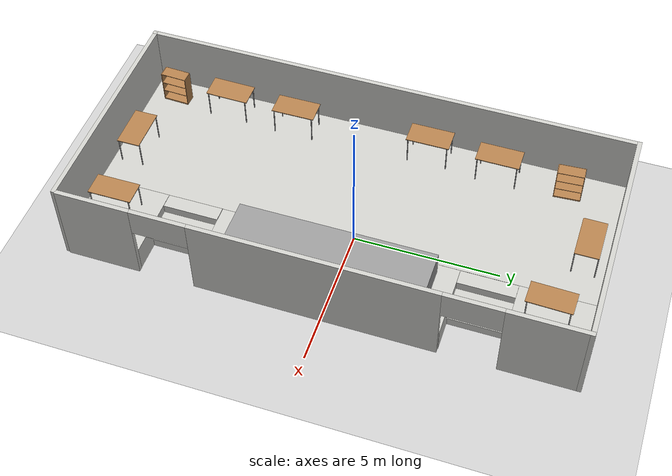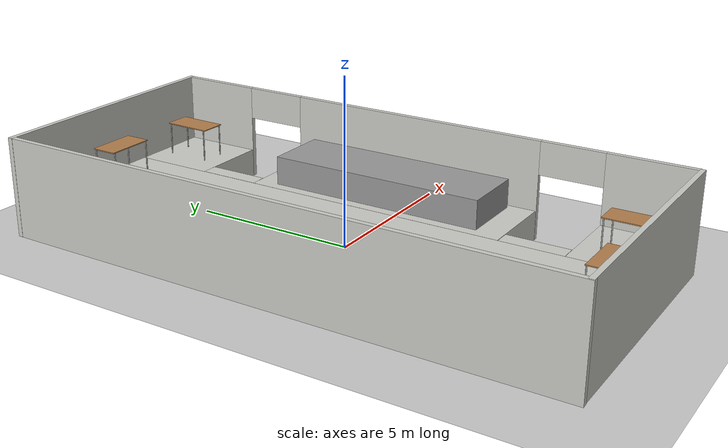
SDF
<sdf version="1.7">
 <world name="default">
  <light name="sun" type="directional">
   <pose>0 0 10 0 -0 0</pose>
   <diffuse>0.8 0.8 0.8 1</diffuse>
   <specular>0.2 0.2 0.2 1</specular>
   <attenuation>
    <range>1000</range>
    <constant>0.9</constant>
    <linear>0.01</linear>
    <quadratic>0.001</quadratic>
   </attenuation>
   <direction>-0.5 0.1 -0.9</direction>
   <spot><inner_angle>0</inner_angle><outer_angle>0</outer_angle><falloff>0</falloff></spot>
  </light>
  <model name="ground_plane">
   <static>1</static>
   <link name="link">
    <collision name="collision">
     <geometry><plane><normal>0 0 1</normal><size>100 100</size></plane></geometry>
     <surface>
      <contact><collide_bitmask>65535</collide_bitmask></contact>
      <friction><ode><mu>100</mu><mu2>50</mu2></ode></friction>
     </surface>
    </collision>
    <visual name="visual">
     <cast_shadows>0</cast_shadows>
     <geometry><plane><normal>0 0 1</normal><size>100 100</size></plane></geometry>
     <material>
      <script><uri>file://media/materials/scripts/gazebo.material</uri><name>Gazebo/Grey</name></script>
     </material>
    </visual>
   </link>
  </model>
  <gravity>0 0 -9.8</gravity>
  <magnetic_field>6e-06 2.3e-05 -4.2e-05</magnetic_field>
  <atmosphere type="adiabatic"/>
  <physics type="ode">
   <max_step_size>0.001</max_step_size>
   <real_time_factor>1</real_time_factor>
   <real_time_update_rate>100</real_time_update_rate>
  </physics>
  <scene><ambient>0.4 0.4 0.4 1</ambient><background>0.7 0.7 0.7 1</background><shadows>1</shadows></scene>
  <spherical_coordinates>
   <surface_model>EARTH_WGS84</surface_model>
   <latitude_deg>0</latitude_deg>
   <longitude_deg>0</longitude_deg>
   <elevation>0</elevation>
   <heading_deg>0</heading_deg>
  </spherical_coordinates>
  <model name="big_lab_final">
   <pose>-0.465455 -0.255995 0 0 -0 0</pose>
   <link name="Stairs_1">
    <visual name="Stairs_1_Visual_0">
     <pose>2.56912 -5.01602 0.15 0 -0 -1.5708</pose>
     <geometry><box><size>1.91 0.5 0.3</size></box></geometry>
     <material>
      <script><uri>file://media/materials/scripts/gazebo.material</uri><name>Gazebo/CeilingTiled</name></script>
      <ambient>0.333333 0.341176 0.32549 1</ambient>
     </material>
     <meta><layer>0</layer></meta>
    </visual>
    <collision name="Stairs_1_Collision_0">
     <geometry><box><size>1.91 0.5 0.3</size></box></geometry>
     <pose>2.56912 -5.01602 0.15 0 -0 -1.5708</pose>
    </collision>
    <visual name="Stairs_1_Visual_1">
     <pose>2.06912 -5.01602 0.45 0 -0 -1.5708</pose>
     <geometry><box><size>1.91 0.5 0.3</size></box></geometry>
     <material>
      <script><uri>file://media/materials/scripts/gazebo.material</uri><name>Gazebo/CeilingTiled</name></script>
      <ambient>0.333333 0.341176 0.32549 1</ambient>
     </material>
     <meta><layer>0</layer></meta>
    </visual>
    <collision name="Stairs_1_Collision_1">
     <geometry><box><size>1.91 0.5 0.3</size></box></geometry>
     <pose>2.06912 -5.01602 0.45 0 -0 -1.5708</pose>
    </collision>
    <visual name="Stairs_1_Visual_2">
     <pose>1.56912 -5.01602 0.75 0 -0 -1.5708</pose>
     <geometry><box><size>1.91 0.5 0.3</size></box></geometry>
     <material>
      <script><uri>file://media/materials/scripts/gazebo.material</uri><name>Gazebo/CeilingTiled</name></script>
      <ambient>0.333333 0.341176 0.32549 1</ambient>
     </material>
     <meta><layer>0</layer></meta>
    </visual>
    <collision name="Stairs_1_Collision_2">
     <geometry><box><size>1.91 0.5 0.3</size></box></geometry>
     <pose>1.56912 -5.01602 0.75 0 -0 -1.5708</pose>
    </collision>
   </link>
   <link name="Stairs_3">
    <visual name="Stairs_3_Visual_0">
     <pose>2.58039 5.06228 0.15 0 0 -1.5708</pose>
     <geometry><box><size>1.91 0.5 0.3</size></box></geometry>
     <material>
      <script><uri>file://media/materials/scripts/gazebo.material</uri><name>Gazebo/CeilingTiled</name></script>
      <ambient>0.333333 0.341176 0.32549 1</ambient>
     </material>
     <meta><layer>0</layer></meta>
    </visual>
    <collision name="Stairs_3_Collision_0">
     <geometry><box><size>1.91 0.5 0.3</size></box></geometry>
     <pose>2.58039 5.06228 0.15 0 0 -1.5708</pose>
    </collision>
    <visual name="Stairs_3_Visual_1">
     <pose>2.08039 5.06228 0.45 0 0 -1.5708</pose>
     <geometry><box><size>1.91 0.5 0.3</size></box></geometry>
     <material>
      <script><uri>file://media/materials/scripts/gazebo.material</uri><name>Gazebo/CeilingTiled</name></script>
      <ambient>0.333333 0.341176 0.32549 1</ambient>
     </material>
     <meta><layer>0</layer></meta>
    </visual>
    <collision name="Stairs_3_Collision_1">
     <geometry><box><size>1.91 0.5 0.3</size></box></geometry>
     <pose>2.08039 5.06228 0.45 0 0 -1.5708</pose>
    </collision>
    <visual name="Stairs_3_Visual_2">
     <pose>1.58039 5.06228 0.75 0 0 -1.5708</pose>
     <geometry><box><size>1.91 0.5 0.3</size></box></geometry>
     <material>
      <script><uri>file://media/materials/scripts/gazebo.material</uri><name>Gazebo/CeilingTiled</name></script>
      <ambient>0.333333 0.341176 0.32549 1</ambient>
     </material>
     <meta><layer>0</layer></meta>
    </visual>
    <collision name="Stairs_3_Collision_2">
     <geometry><box><size>1.91 0.5 0.3</size></box></geometry>
     <pose>1.58039 5.06228 0.75 0 0 -1.5708</pose>
    </collision>
   </link>
   <link name="Wall_0">
    <collision name="Wall_0_Collision">
     <geometry><box><size>17 5.15 0.9</size></box></geometry>
     <pose>0 0 0.45 0 -0 0</pose>
    </collision>
    <visual name="Wall_0_Visual">
     <pose>0 0 0.45 0 -0 0</pose>
     <geometry><box><size>17 5.15 0.9</size></box></geometry>
     <material>
      <script><uri>file://media/materials/scripts/gazebo.material</uri><name>Gazebo/CeilingTiled</name></script>
      <ambient>0.333333 0.341176 0.32549 1</ambient>
     </material>
     <meta><layer>0</layer></meta>
    </visual>
    <pose>-1.2516 0.017055 0 0 -0 -1.5708</pose>
   </link>
   <link name="Wall_11">
    <collision name="Wall_11_Collision">
     <geometry><box><size>7.875 0.15 3</size></box></geometry>
     <pose>0 0 1.5 0 -0 0</pose>
    </collision>
    <visual name="Wall_11_Visual">
     <pose>0 0 1.5 0 -0 0</pose>
     <geometry><box><size>7.875 0.15 3</size></box></geometry>
     <material>
      <script><uri>file://media/materials/scripts/gazebo.material</uri><name>Gazebo/CeilingTiled</name></script>
      <ambient>1 1 1 1</ambient>
     </material>
     <meta><layer>0</layer></meta>
    </visual>
    <pose>0.0055 -8.555 0 0 -0 0</pose>
   </link>
   <link name="Wall_13">
    <collision name="Wall_13_Collision">
     <geometry><box><size>7.95 0.15 3</size></box></geometry>
     <pose>0 0 1.5 0 -0 0</pose>
    </collision>
    <visual name="Wall_13_Visual">
     <pose>0 0 1.5 0 -0 0</pose>
     <geometry><box><size>7.95 0.15 3</size></box></geometry>
     <material>
      <script><uri>file://media/materials/scripts/gazebo.material</uri><name>Gazebo/CeilingTiled</name></script>
      <ambient>1 1 1 1</ambient>
     </material>
     <meta><layer>0</layer></meta>
    </visual>
    <pose>0 8.568 0 0 -0 3.14159</pose>
   </link>
   <link name="Wall_16">
    <collision name="Wall_16_Collision">
     <geometry><box><size>17.15 0.15 3</size></box></geometry>
     <pose>0 0 1.5 0 -0 0</pose>
    </collision>
    <visual name="Wall_16_Visual">
     <pose>0 0 1.5 0 -0 0</pose>
     <geometry><box><size>17.15 0.15 3</size></box></geometry>
     <material>
      <script><uri>file://media/materials/scripts/gazebo.material</uri><name>Gazebo/CeilingTiled</name></script>
      <ambient>1 1 1 1</ambient>
     </material>
     <meta><layer>0</layer></meta>
    </visual>
    <pose>-3.896 -0.07 0 0 -0 1.5708</pose>
   </link>
   <link name="Wall_18">
    <pose>3.898 0.07 0 0 -0 -1.5708</pose>
    <visual name="Wall_18_Visual_0">
     <pose>-7.25268 0 1.5 0 -0 0</pose>
     <geometry><box><size>2.64463 0.15 3</size></box></geometry>
     <material>
      <script><uri>file://media/materials/scripts/gazebo.material</uri><name>Gazebo/CeilingTiled</name></script>
      <ambient>1 1 1 1</ambient>
     </material>
     <meta><layer>0</layer></meta>
    </visual>
    <collision name="Wall_18_Collision_0">
     <geometry><box><size>2.64463 0.15 3</size></box></geometry>
     <pose>-7.25268 0 1.5 0 -0 0</pose>
    </collision>
    <visual name="Wall_18_Visual_1">
     <pose>0.054632 0 1.5 0 -0 0</pose>
     <geometry><box><size>8.15 0.15 3</size></box></geometry>
     <material>
      <script><uri>file://media/materials/scripts/gazebo.material</uri><name>Gazebo/CeilingTiled</name></script>
      <ambient>1 1 1 1</ambient>
     </material>
     <meta><layer>0</layer></meta>
    </visual>
    <collision name="Wall_18_Collision_1">
     <geometry><box><size>8.15 0.15 3</size></box></geometry>
     <pose>0.054632 0 1.5 0 -0 0</pose>
    </collision>
    <visual name="Wall_18_Visual_2">
     <pose>7.30732 0 1.5 0 -0 0</pose>
     <geometry><box><size>2.53537 0.15 3</size></box></geometry>
     <material>
      <script><uri>file://media/materials/scripts/gazebo.material</uri><name>Gazebo/CeilingTiled</name></script>
      <ambient>1 1 1 1</ambient>
     </material>
     <meta><layer>0</layer></meta>
    </visual>
    <collision name="Wall_18_Collision_2">
     <geometry><box><size>2.53537 0.15 3</size></box></geometry>
     <pose>7.30732 0 1.5 0 -0 0</pose>
    </collision>
    <visual name="Wall_18_Visual_3">
     <pose>-4.97537 0 2.5 0 -0 0</pose>
     <geometry><box><size>1.91 0.15 1</size></box></geometry>
     <material>
      <script><uri>file://media/materials/scripts/gazebo.material</uri><name>Gazebo/CeilingTiled</name></script>
      <ambient>1 1 1 1</ambient>
     </material>
     <meta><layer>0</layer></meta>
    </visual>
    <collision name="Wall_18_Collision_3">
     <geometry><box><size>1.91 0.15 1</size></box></geometry>
     <pose>-4.97537 0 2.5 0 -0 0</pose>
    </collision>
    <visual name="Wall_18_Visual_4">
     <pose>5.08463 0 2.5 0 -0 0</pose>
     <geometry><box><size>1.91 0.15 1</size></box></geometry>
     <material>
      <script><uri>file://media/materials/scripts/gazebo.material</uri><name>Gazebo/CeilingTiled</name></script>
      <ambient>1 1 1 1</ambient>
     </material>
     <meta><layer>0</layer></meta>
    </visual>
    <collision name="Wall_18_Collision_4">
     <geometry><box><size>1.91 0.15 1</size></box></geometry>
     <pose>5.08463 0 2.5 0 -0 0</pose>
    </collision>
   </link>
   <link name="Wall_2">
    <collision name="Wall_2_Collision">
     <geometry><box><size>2.51 2.5 0.9</size></box></geometry>
     <pose>0 0 0.45 0 -0 0</pose>
    </collision>
    <visual name="Wall_2_Visual">
     <pose>0 0 0.45 0 -0 0</pose>
     <geometry><box><size>2.51 2.5 0.9</size></box></geometry>
     <material>
      <script><uri>file://media/materials/scripts/gazebo.material</uri><name>Gazebo/CeilingTiled</name></script>
      <ambient>0.333333 0.341176 0.32549 1</ambient>
     </material>
     <meta><layer>0</layer></meta>
    </visual>
    <pose>2.575 -7.23 0 0 -0 0</pose>
   </link>
   <link name="Wall_4">
    <collision name="Wall_4_Collision">
     <geometry><box><size>2.51 2.5 0.9</size></box></geometry>
     <pose>0 0 0.45 0 -0 0</pose>
    </collision>
    <visual name="Wall_4_Visual">
     <pose>0 0 0.45 0 -0 0</pose>
     <geometry><box><size>2.51 2.5 0.9</size></box></geometry>
     <material>
      <script><uri>file://media/materials/scripts/gazebo.material</uri><name>Gazebo/CeilingTiled</name></script>
      <ambient>0.333333 0.341176 0.32549 1</ambient>
     </material>
     <meta><layer>0</layer></meta>
    </visual>
    <pose>2.573 7.2685 0 0 -0 3.14159</pose>
   </link>
   <link name="Wall_7">
    <collision name="Wall_7_Collision">
     <geometry><box><size>8.145 2.5 0.9</size></box></geometry>
     <pose>0 0 0.45 0 -0 0</pose>
    </collision>
    <visual name="Wall_7_Visual">
     <pose>0 0 0.45 0 -0 0</pose>
     <geometry><box><size>8.145 2.5 0.9</size></box></geometry>
     <material>
      <script><uri>file://media/materials/scripts/gazebo.material</uri><name>Gazebo/CeilingTiled</name></script>
      <ambient>0.333333 0.341176 0.32549 1</ambient>
     </material>
     <meta><layer>0</layer></meta>
    </visual>
    <pose>2.57459 0.029666 0 0 -0 -1.5708</pose>
   </link>
   <static>1</static>
  </model>
  <model name="table">
   <static>1</static>
   <link name="link">
    <collision name="surface">
     <pose>0 0 1 0 -0 0</pose>
     <geometry><box><size>1.5 0.8 0.03</size></box></geometry>
     <surface><friction><ode><mu>0.6</mu><mu2>0.6</mu2></ode></friction></surface>
    </collision>
    <visual name="visual1">
     <pose>0 0 1 0 -0 0</pose>
     <geometry><box><size>1.5 0.8 0.03</size></box></geometry>
     <material>
      <script><uri>file://media/materials/scripts/gazebo.material</uri><name>Gazebo/Wood</name></script>
     </material>
    </visual>
    <collision name="front_left_leg">
     <pose>0.68 0.38 0.5 0 -0 0</pose>
     <geometry><cylinder><radius>0.02</radius><length>1</length></cylinder></geometry>
    </collision>
    <visual name="front_left_leg">
     <pose>0.68 0.38 0.5 0 -0 0</pose>
     <geometry><cylinder><radius>0.02</radius><length>1</length></cylinder></geometry>
     <material>
      <script><uri>file://media/materials/scripts/gazebo.material</uri><name>Gazebo/Grey</name></script>
     </material>
    </visual>
    <collision name="front_right_leg">
     <pose>0.68 -0.38 0.5 0 -0 0</pose>
     <geometry><cylinder><radius>0.02</radius><length>1</length></cylinder></geometry>
    </collision>
    <visual name="front_right_leg">
     <pose>0.68 -0.38 0.5 0 -0 0</pose>
     <geometry><cylinder><radius>0.02</radius><length>1</length></cylinder></geometry>
     <material>
      <script><uri>file://media/materials/scripts/gazebo.material</uri><name>Gazebo/Grey</name></script>
     </material>
    </visual>
    <collision name="back_right_leg">
     <pose>-0.68 -0.38 0.5 0 -0 0</pose>
     <geometry><cylinder><radius>0.02</radius><length>1</length></cylinder></geometry>
    </collision>
    <visual name="back_right_leg">
     <pose>-0.68 -0.38 0.5 0 -0 0</pose>
     <geometry><cylinder><radius>0.02</radius><length>1</length></cylinder></geometry>
     <material>
      <script><uri>file://media/materials/scripts/gazebo.material</uri><name>Gazebo/Grey</name></script>
     </material>
    </visual>
    <collision name="back_left_leg">
     <pose>-0.68 0.38 0.5 0 -0 0</pose>
     <geometry><cylinder><radius>0.02</radius><length>1</length></cylinder></geometry>
    </collision>
    <visual name="back_left_leg">
     <pose>-0.68 0.38 0.5 0 -0 0</pose>
     <geometry><cylinder><radius>0.02</radius><length>1</length></cylinder></geometry>
     <material>
      <script><uri>file://media/materials/scripts/gazebo.material</uri><name>Gazebo/Grey</name></script>
     </material>
    </visual>
   </link>
   <pose>-0.786803 -8.0275 0.922176 0 -0 0</pose>
  </model>
  <model name="table_0">
   <static>1</static>
   <link name="link">
    <collision name="surface">
     <pose>0 0 1 0 -0 0</pose>
     <geometry><box><size>1.5 0.8 0.03</size></box></geometry>
     <surface><friction><ode><mu>0.6</mu><mu2>0.6</mu2></ode></friction></surface>
    </collision>
    <visual name="visual1">
     <pose>0 0 1 0 -0 0</pose>
     <geometry><box><size>1.5 0.8 0.03</size></box></geometry>
     <material>
      <script><uri>file://media/materials/scripts/gazebo.material</uri><name>Gazebo/Wood</name></script>
     </material>
    </visual>
    <collision name="front_left_leg">
     <pose>0.68 0.38 0.5 0 -0 0</pose>
     <geometry><cylinder><radius>0.02</radius><length>1</length></cylinder></geometry>
    </collision>
    <visual name="front_left_leg">
     <pose>0.68 0.38 0.5 0 -0 0</pose>
     <geometry><cylinder><radius>0.02</radius><length>1</length></cylinder></geometry>
     <material>
      <script><uri>file://media/materials/scripts/gazebo.material</uri><name>Gazebo/Grey</name></script>
     </material>
    </visual>
    <collision name="front_right_leg">
     <pose>0.68 -0.38 0.5 0 -0 0</pose>
     <geometry><cylinder><radius>0.02</radius><length>1</length></cylinder></geometry>
    </collision>
    <visual name="front_right_leg">
     <pose>0.68 -0.38 0.5 0 -0 0</pose>
     <geometry><cylinder><radius>0.02</radius><length>1</length></cylinder></geometry>
     <material>
      <script><uri>file://media/materials/scripts/gazebo.material</uri><name>Gazebo/Grey</name></script>
     </material>
    </visual>
    <collision name="back_right_leg">
     <pose>-0.68 -0.38 0.5 0 -0 0</pose>
     <geometry><cylinder><radius>0.02</radius><length>1</length></cylinder></geometry>
    </collision>
    <visual name="back_right_leg">
     <pose>-0.68 -0.38 0.5 0 -0 0</pose>
     <geometry><cylinder><radius>0.02</radius><length>1</length></cylinder></geometry>
     <material>
      <script><uri>file://media/materials/scripts/gazebo.material</uri><name>Gazebo/Grey</name></script>
     </material>
    </visual>
    <collision name="back_left_leg">
     <pose>-0.68 0.38 0.5 0 -0 0</pose>
     <geometry><cylinder><radius>0.02</radius><length>1</length></cylinder></geometry>
    </collision>
    <visual name="back_left_leg">
     <pose>-0.68 0.38 0.5 0 -0 0</pose>
     <geometry><cylinder><radius>0.02</radius><length>1</length></cylinder></geometry>
     <material>
      <script><uri>file://media/materials/scripts/gazebo.material</uri><name>Gazebo/Grey</name></script>
     </material>
    </visual>
   </link>
   <pose>-0.860523 7.56506 0.938554 0 -0 0</pose>
  </model>
  <model name="table_1">
   <static>1</static>
   <link name="link">
    <collision name="surface">
     <pose>0 0 1 0 -0 0</pose>
     <geometry><box><size>1.5 0.8 0.03</size></box></geometry>
     <surface><friction><ode><mu>0.6</mu><mu2>0.6</mu2></ode></friction></surface>
    </collision>
    <visual name="visual1">
     <pose>0 0 1 0 -0 0</pose>
     <geometry><box><size>1.5 0.8 0.03</size></box></geometry>
     <material>
      <script><uri>file://media/materials/scripts/gazebo.material</uri><name>Gazebo/Wood</name></script>
     </material>
    </visual>
    <collision name="front_left_leg">
     <pose>0.68 0.38 0.5 0 -0 0</pose>
     <geometry><cylinder><radius>0.02</radius><length>1</length></cylinder></geometry>
    </collision>
    <visual name="front_left_leg">
     <pose>0.68 0.38 0.5 0 -0 0</pose>
     <geometry><cylinder><radius>0.02</radius><length>1</length></cylinder></geometry>
     <material>
      <script><uri>file://media/materials/scripts/gazebo.material</uri><name>Gazebo/Grey</name></script>
     </material>
    </visual>
    <collision name="front_right_leg">
     <pose>0.68 -0.38 0.5 0 -0 0</pose>
     <geometry><cylinder><radius>0.02</radius><length>1</length></cylinder></geometry>
    </collision>
    <visual name="front_right_leg">
     <pose>0.68 -0.38 0.5 0 -0 0</pose>
     <geometry><cylinder><radius>0.02</radius><length>1</length></cylinder></geometry>
     <material>
      <script><uri>file://media/materials/scripts/gazebo.material</uri><name>Gazebo/Grey</name></script>
     </material>
    </visual>
    <collision name="back_right_leg">
     <pose>-0.68 -0.38 0.5 0 -0 0</pose>
     <geometry><cylinder><radius>0.02</radius><length>1</length></cylinder></geometry>
    </collision>
    <visual name="back_right_leg">
     <pose>-0.68 -0.38 0.5 0 -0 0</pose>
     <geometry><cylinder><radius>0.02</radius><length>1</length></cylinder></geometry>
     <material>
      <script><uri>file://media/materials/scripts/gazebo.material</uri><name>Gazebo/Grey</name></script>
     </material>
    </visual>
    <collision name="back_left_leg">
     <pose>-0.68 0.38 0.5 0 -0 0</pose>
     <geometry><cylinder><radius>0.02</radius><length>1</length></cylinder></geometry>
    </collision>
    <visual name="back_left_leg">
     <pose>-0.68 0.38 0.5 0 -0 0</pose>
     <geometry><cylinder><radius>0.02</radius><length>1</length></cylinder></geometry>
     <material>
      <script><uri>file://media/materials/scripts/gazebo.material</uri><name>Gazebo/Grey</name></script>
     </material>
    </visual>
   </link>
   <pose>-3.43018 3.98699 0.900017 0 -0 1.5681</pose>
  </model>
  <model name="table_2">
   <static>1</static>
   <link name="link">
    <collision name="surface">
     <pose>0 0 1 0 -0 0</pose>
     <geometry><box><size>1.5 0.8 0.03</size></box></geometry>
     <surface><friction><ode><mu>0.6</mu><mu2>0.6</mu2></ode></friction></surface>
    </collision>
    <visual name="visual1">
     <pose>0 0 1 0 -0 0</pose>
     <geometry><box><size>1.5 0.8 0.03</size></box></geometry>
     <material>
      <script><uri>file://media/materials/scripts/gazebo.material</uri><name>Gazebo/Wood</name></script>
     </material>
    </visual>
    <collision name="front_left_leg">
     <pose>0.68 0.38 0.5 0 -0 0</pose>
     <geometry><cylinder><radius>0.02</radius><length>1</length></cylinder></geometry>
    </collision>
    <visual name="front_left_leg">
     <pose>0.68 0.38 0.5 0 -0 0</pose>
     <geometry><cylinder><radius>0.02</radius><length>1</length></cylinder></geometry>
     <material>
      <script><uri>file://media/materials/scripts/gazebo.material</uri><name>Gazebo/Grey</name></script>
     </material>
    </visual>
    <collision name="front_right_leg">
     <pose>0.68 -0.38 0.5 0 -0 0</pose>
     <geometry><cylinder><radius>0.02</radius><length>1</length></cylinder></geometry>
    </collision>
    <visual name="front_right_leg">
     <pose>0.68 -0.38 0.5 0 -0 0</pose>
     <geometry><cylinder><radius>0.02</radius><length>1</length></cylinder></geometry>
     <material>
      <script><uri>file://media/materials/scripts/gazebo.material</uri><name>Gazebo/Grey</name></script>
     </material>
    </visual>
    <collision name="back_right_leg">
     <pose>-0.68 -0.38 0.5 0 -0 0</pose>
     <geometry><cylinder><radius>0.02</radius><length>1</length></cylinder></geometry>
    </collision>
    <visual name="back_right_leg">
     <pose>-0.68 -0.38 0.5 0 -0 0</pose>
     <geometry><cylinder><radius>0.02</radius><length>1</length></cylinder></geometry>
     <material>
      <script><uri>file://media/materials/scripts/gazebo.material</uri><name>Gazebo/Grey</name></script>
     </material>
    </visual>
    <collision name="back_left_leg">
     <pose>-0.68 0.38 0.5 0 -0 0</pose>
     <geometry><cylinder><radius>0.02</radius><length>1</length></cylinder></geometry>
    </collision>
    <visual name="back_left_leg">
     <pose>-0.68 0.38 0.5 0 -0 0</pose>
     <geometry><cylinder><radius>0.02</radius><length>1</length></cylinder></geometry>
     <material>
      <script><uri>file://media/materials/scripts/gazebo.material</uri><name>Gazebo/Grey</name></script>
     </material>
    </visual>
   </link>
   <pose>-3.55045 1.5471 0.909852 0 -0 1.57379</pose>
  </model>
  <model name="table_3">
   <static>1</static>
   <link name="link">
    <collision name="surface">
     <pose>0 0 1 0 -0 0</pose>
     <geometry><box><size>1.5 0.8 0.03</size></box></geometry>
     <surface><friction><ode><mu>0.6</mu><mu2>0.6</mu2></ode></friction></surface>
    </collision>
    <visual name="visual1">
     <pose>0 0 1 0 -0 0</pose>
     <geometry><box><size>1.5 0.8 0.03</size></box></geometry>
     <material>
      <script><uri>file://media/materials/scripts/gazebo.material</uri><name>Gazebo/Wood</name></script>
     </material>
    </visual>
    <collision name="front_left_leg">
     <pose>0.68 0.38 0.5 0 -0 0</pose>
     <geometry><cylinder><radius>0.02</radius><length>1</length></cylinder></geometry>
    </collision>
    <visual name="front_left_leg">
     <pose>0.68 0.38 0.5 0 -0 0</pose>
     <geometry><cylinder><radius>0.02</radius><length>1</length></cylinder></geometry>
     <material>
      <script><uri>file://media/materials/scripts/gazebo.material</uri><name>Gazebo/Grey</name></script>
     </material>
    </visual>
    <collision name="front_right_leg">
     <pose>0.68 -0.38 0.5 0 -0 0</pose>
     <geometry><cylinder><radius>0.02</radius><length>1</length></cylinder></geometry>
    </collision>
    <visual name="front_right_leg">
     <pose>0.68 -0.38 0.5 0 -0 0</pose>
     <geometry><cylinder><radius>0.02</radius><length>1</length></cylinder></geometry>
     <material>
      <script><uri>file://media/materials/scripts/gazebo.material</uri><name>Gazebo/Grey</name></script>
     </material>
    </visual>
    <collision name="back_right_leg">
     <pose>-0.68 -0.38 0.5 0 -0 0</pose>
     <geometry><cylinder><radius>0.02</radius><length>1</length></cylinder></geometry>
    </collision>
    <visual name="back_right_leg">
     <pose>-0.68 -0.38 0.5 0 -0 0</pose>
     <geometry><cylinder><radius>0.02</radius><length>1</length></cylinder></geometry>
     <material>
      <script><uri>file://media/materials/scripts/gazebo.material</uri><name>Gazebo/Grey</name></script>
     </material>
    </visual>
    <collision name="back_left_leg">
     <pose>-0.68 0.38 0.5 0 -0 0</pose>
     <geometry><cylinder><radius>0.02</radius><length>1</length></cylinder></geometry>
    </collision>
    <visual name="back_left_leg">
     <pose>-0.68 0.38 0.5 0 -0 0</pose>
     <geometry><cylinder><radius>0.02</radius><length>1</length></cylinder></geometry>
     <material>
      <script><uri>file://media/materials/scripts/gazebo.material</uri><name>Gazebo/Grey</name></script>
     </material>
    </visual>
   </link>
   <pose>-3.41167 -3.23121 0.91337 0 -0 1.57742</pose>
  </model>
  <model name="table_4">
   <static>1</static>
   <link name="link">
    <collision name="surface">
     <pose>0 0 1 0 -0 0</pose>
     <geometry><box><size>1.5 0.8 0.03</size></box></geometry>
     <surface><friction><ode><mu>0.6</mu><mu2>0.6</mu2></ode></friction></surface>
    </collision>
    <visual name="visual1">
     <pose>0 0 1 0 -0 0</pose>
     <geometry><box><size>1.5 0.8 0.03</size></box></geometry>
     <material>
      <script><uri>file://media/materials/scripts/gazebo.material</uri><name>Gazebo/Wood</name></script>
     </material>
    </visual>
    <collision name="front_left_leg">
     <pose>0.68 0.38 0.5 0 -0 0</pose>
     <geometry><cylinder><radius>0.02</radius><length>1</length></cylinder></geometry>
    </collision>
    <visual name="front_left_leg">
     <pose>0.68 0.38 0.5 0 -0 0</pose>
     <geometry><cylinder><radius>0.02</radius><length>1</length></cylinder></geometry>
     <material>
      <script><uri>file://media/materials/scripts/gazebo.material</uri><name>Gazebo/Grey</name></script>
     </material>
    </visual>
    <collision name="front_right_leg">
     <pose>0.68 -0.38 0.5 0 -0 0</pose>
     <geometry><cylinder><radius>0.02</radius><length>1</length></cylinder></geometry>
    </collision>
    <visual name="front_right_leg">
     <pose>0.68 -0.38 0.5 0 -0 0</pose>
     <geometry><cylinder><radius>0.02</radius><length>1</length></cylinder></geometry>
     <material>
      <script><uri>file://media/materials/scripts/gazebo.material</uri><name>Gazebo/Grey</name></script>
     </material>
    </visual>
    <collision name="back_right_leg">
     <pose>-0.68 -0.38 0.5 0 -0 0</pose>
     <geometry><cylinder><radius>0.02</radius><length>1</length></cylinder></geometry>
    </collision>
    <visual name="back_right_leg">
     <pose>-0.68 -0.38 0.5 0 -0 0</pose>
     <geometry><cylinder><radius>0.02</radius><length>1</length></cylinder></geometry>
     <material>
      <script><uri>file://media/materials/scripts/gazebo.material</uri><name>Gazebo/Grey</name></script>
     </material>
    </visual>
    <collision name="back_left_leg">
     <pose>-0.68 0.38 0.5 0 -0 0</pose>
     <geometry><cylinder><radius>0.02</radius><length>1</length></cylinder></geometry>
    </collision>
    <visual name="back_left_leg">
     <pose>-0.68 0.38 0.5 0 -0 0</pose>
     <geometry><cylinder><radius>0.02</radius><length>1</length></cylinder></geometry>
     <material>
      <script><uri>file://media/materials/scripts/gazebo.material</uri><name>Gazebo/Grey</name></script>
     </material>
    </visual>
   </link>
   <pose>-3.50182 -5.69956 0.91147 0.018351 0.00252 1.55812</pose>
  </model>
  <model name="table_5">
   <static>1</static>
   <link name="link">
    <collision name="surface">
     <pose>0 0 1 0 -0 0</pose>
     <geometry><box><size>1.5 0.8 0.03</size></box></geometry>
     <surface><friction><ode><mu>0.6</mu><mu2>0.6</mu2></ode></friction></surface>
    </collision>
    <visual name="visual1">
     <pose>0 0 1 0 -0 0</pose>
     <geometry><box><size>1.5 0.8 0.03</size></box></geometry>
     <material>
      <script><uri>file://media/materials/scripts/gazebo.material</uri><name>Gazebo/Wood</name></script>
     </material>
    </visual>
    <collision name="front_left_leg">
     <pose>0.68 0.38 0.5 0 -0 0</pose>
     <geometry><cylinder><radius>0.02</radius><length>1</length></cylinder></geometry>
    </collision>
    <visual name="front_left_leg">
     <pose>0.68 0.38 0.5 0 -0 0</pose>
     <geometry><cylinder><radius>0.02</radius><length>1</length></cylinder></geometry>
     <material>
      <script><uri>file://media/materials/scripts/gazebo.material</uri><name>Gazebo/Grey</name></script>
     </material>
    </visual>
    <collision name="front_right_leg">
     <pose>0.68 -0.38 0.5 0 -0 0</pose>
     <geometry><cylinder><radius>0.02</radius><length>1</length></cylinder></geometry>
    </collision>
    <visual name="front_right_leg">
     <pose>0.68 -0.38 0.5 0 -0 0</pose>
     <geometry><cylinder><radius>0.02</radius><length>1</length></cylinder></geometry>
     <material>
      <script><uri>file://media/materials/scripts/gazebo.material</uri><name>Gazebo/Grey</name></script>
     </material>
    </visual>
    <collision name="back_right_leg">
     <pose>-0.68 -0.38 0.5 0 -0 0</pose>
     <geometry><cylinder><radius>0.02</radius><length>1</length></cylinder></geometry>
    </collision>
    <visual name="back_right_leg">
     <pose>-0.68 -0.38 0.5 0 -0 0</pose>
     <geometry><cylinder><radius>0.02</radius><length>1</length></cylinder></geometry>
     <material>
      <script><uri>file://media/materials/scripts/gazebo.material</uri><name>Gazebo/Grey</name></script>
     </material>
    </visual>
    <collision name="back_left_leg">
     <pose>-0.68 0.38 0.5 0 -0 0</pose>
     <geometry><cylinder><radius>0.02</radius><length>1</length></cylinder></geometry>
    </collision>
    <visual name="back_left_leg">
     <pose>-0.68 0.38 0.5 0 -0 0</pose>
     <geometry><cylinder><radius>0.02</radius><length>1</length></cylinder></geometry>
     <material>
      <script><uri>file://media/materials/scripts/gazebo.material</uri><name>Gazebo/Grey</name></script>
     </material>
    </visual>
   </link>
   <pose>1.82443 6.88155 1.00192 0 0 -1.59504</pose>
  </model>
  <model name="table_6">
   <static>1</static>
   <link name="link">
    <collision name="surface">
     <pose>0 0 1 0 -0 0</pose>
     <geometry><box><size>1.5 0.8 0.03</size></box></geometry>
     <surface><friction><ode><mu>0.6</mu><mu2>0.6</mu2></ode></friction></surface>
    </collision>
    <visual name="visual1">
     <pose>0 0 1 0 -0 0</pose>
     <geometry><box><size>1.5 0.8 0.03</size></box></geometry>
     <material>
      <script><uri>file://media/materials/scripts/gazebo.material</uri><name>Gazebo/Wood</name></script>
     </material>
    </visual>
    <collision name="front_left_leg">
     <pose>0.68 0.38 0.5 0 -0 0</pose>
     <geometry><cylinder><radius>0.02</radius><length>1</length></cylinder></geometry>
    </collision>
    <visual name="front_left_leg">
     <pose>0.68 0.38 0.5 0 -0 0</pose>
     <geometry><cylinder><radius>0.02</radius><length>1</length></cylinder></geometry>
     <material>
      <script><uri>file://media/materials/scripts/gazebo.material</uri><name>Gazebo/Grey</name></script>
     </material>
    </visual>
    <collision name="front_right_leg">
     <pose>0.68 -0.38 0.5 0 -0 0</pose>
     <geometry><cylinder><radius>0.02</radius><length>1</length></cylinder></geometry>
    </collision>
    <visual name="front_right_leg">
     <pose>0.68 -0.38 0.5 0 -0 0</pose>
     <geometry><cylinder><radius>0.02</radius><length>1</length></cylinder></geometry>
     <material>
      <script><uri>file://media/materials/scripts/gazebo.material</uri><name>Gazebo/Grey</name></script>
     </material>
    </visual>
    <collision name="back_right_leg">
     <pose>-0.68 -0.38 0.5 0 -0 0</pose>
     <geometry><cylinder><radius>0.02</radius><length>1</length></cylinder></geometry>
    </collision>
    <visual name="back_right_leg">
     <pose>-0.68 -0.38 0.5 0 -0 0</pose>
     <geometry><cylinder><radius>0.02</radius><length>1</length></cylinder></geometry>
     <material>
      <script><uri>file://media/materials/scripts/gazebo.material</uri><name>Gazebo/Grey</name></script>
     </material>
    </visual>
    <collision name="back_left_leg">
     <pose>-0.68 0.38 0.5 0 -0 0</pose>
     <geometry><cylinder><radius>0.02</radius><length>1</length></cylinder></geometry>
    </collision>
    <visual name="back_left_leg">
     <pose>-0.68 0.38 0.5 0 -0 0</pose>
     <geometry><cylinder><radius>0.02</radius><length>1</length></cylinder></geometry>
     <material>
      <script><uri>file://media/materials/scripts/gazebo.material</uri><name>Gazebo/Grey</name></script>
     </material>
    </visual>
   </link>
   <pose>1.91527 -7.61519 0.897907 0 -0 1.57377</pose>
  </model>
  <model name="bookshelf">
   <static>1</static>
   <link name="link">
    <inertial><mass>1</mass></inertial>
    <collision name="back">
     <pose>0 0.005 0.6 0 -0 0</pose>
     <geometry><box><size>0.9 0.01 1.2</size></box></geometry>
    </collision>
    <visual name="visual1">
     <pose>0 0.005 0.6 0 -0 0</pose>
     <geometry><box><size>0.9 0.01 1.2</size></box></geometry>
     <material>
      <script><uri>file://media/materials/scripts/gazebo.material</uri><name>Gazebo/Wood</name></script>
     </material>
    </visual>
    <collision name="left_side">
     <pose>0.45 -0.195 0.6 0 -0 0</pose>
     <geometry><box><size>0.02 0.4 1.2</size></box></geometry>
    </collision>
    <visual name="visual2">
     <pose>0.45 -0.195 0.6 0 -0 0</pose>
     <geometry><box><size>0.02 0.4 1.2</size></box></geometry>
     <material>
      <script><uri>file://media/materials/scripts/gazebo.material</uri><name>Gazebo/Wood</name></script>
     </material>
    </visual>
    <collision name="right_side">
     <pose>-0.45 -0.195 0.6 0 -0 0</pose>
     <geometry><box><size>0.02 0.4 1.2</size></box></geometry>
    </collision>
    <visual name="visual3">
     <pose>-0.45 -0.195 0.6 0 -0 0</pose>
     <geometry><box><size>0.02 0.4 1.2</size></box></geometry>
     <material>
      <script><uri>file://media/materials/scripts/gazebo.material</uri><name>Gazebo/Wood</name></script>
     </material>
    </visual>
    <collision name="bottom">
     <pose>0 -0.195 0.03 0 -0 0</pose>
     <geometry><box><size>0.88 0.4 0.06</size></box></geometry>
    </collision>
    <visual name="visual4">
     <pose>0 -0.195 0.03 0 -0 0</pose>
     <geometry><box><size>0.88 0.4 0.06</size></box></geometry>
     <material>
      <script><uri>file://media/materials/scripts/gazebo.material</uri><name>Gazebo/Wood</name></script>
     </material>
    </visual>
    <collision name="top">
     <pose>0 -0.195 1.19 0 -0 0</pose>
     <geometry><box><size>0.88 0.4 0.02</size></box></geometry>
    </collision>
    <visual name="visual5">
     <pose>0 -0.195 1.19 0 -0 0</pose>
     <geometry><box><size>0.88 0.4 0.02</size></box></geometry>
     <material>
      <script><uri>file://media/materials/scripts/gazebo.material</uri><name>Gazebo/Wood</name></script>
     </material>
    </visual>
    <collision name="low_shelf">
     <pose>0 -0.195 0.43 0 -0 0</pose>
     <geometry><box><size>0.88 0.4 0.02</size></box></geometry>
    </collision>
    <visual name="visual6">
     <pose>0 -0.195 0.43 0 -0 0</pose>
     <geometry><box><size>0.88 0.4 0.02</size></box></geometry>
     <material>
      <script><uri>file://media/materials/scripts/gazebo.material</uri><name>Gazebo/Wood</name></script>
     </material>
    </visual>
    <collision name="high_shelf">
     <pose>0 -0.195 0.8 0 -0 0</pose>
     <geometry><box><size>0.88 0.4 0.02</size></box></geometry>
    </collision>
    <visual name="visual7">
     <pose>0 -0.195 0.8 0 -0 0</pose>
     <geometry><box><size>0.88 0.4 0.02</size></box></geometry>
     <material>
      <script><uri>file://media/materials/scripts/gazebo.material</uri><name>Gazebo/Wood</name></script>
     </material>
    </visual>
   </link>
   <pose>-3.67668 -7.7689 0.897537 0 -0 1.5299</pose>
  </model>
  <model name="bookshelf_0">
   <static>1</static>
   <link name="link">
    <inertial><mass>1</mass></inertial>
    <collision name="back">
     <pose>0 0.005 0.6 0 -0 0</pose>
     <geometry><box><size>0.9 0.01 1.2</size></box></geometry>
    </collision>
    <visual name="visual1">
     <pose>0 0.005 0.6 0 -0 0</pose>
     <geometry><box><size>0.9 0.01 1.2</size></box></geometry>
     <material>
      <script><uri>file://media/materials/scripts/gazebo.material</uri><name>Gazebo/Wood</name></script>
     </material>
    </visual>
    <collision name="left_side">
     <pose>0.45 -0.195 0.6 0 -0 0</pose>
     <geometry><box><size>0.02 0.4 1.2</size></box></geometry>
    </collision>
    <visual name="visual2">
     <pose>0.45 -0.195 0.6 0 -0 0</pose>
     <geometry><box><size>0.02 0.4 1.2</size></box></geometry>
     <material>
      <script><uri>file://media/materials/scripts/gazebo.material</uri><name>Gazebo/Wood</name></script>
     </material>
    </visual>
    <collision name="right_side">
     <pose>-0.45 -0.195 0.6 0 -0 0</pose>
     <geometry><box><size>0.02 0.4 1.2</size></box></geometry>
    </collision>
    <visual name="visual3">
     <pose>-0.45 -0.195 0.6 0 -0 0</pose>
     <geometry><box><size>0.02 0.4 1.2</size></box></geometry>
     <material>
      <script><uri>file://media/materials/scripts/gazebo.material</uri><name>Gazebo/Wood</name></script>
     </material>
    </visual>
    <collision name="bottom">
     <pose>0 -0.195 0.03 0 -0 0</pose>
     <geometry><box><size>0.88 0.4 0.06</size></box></geometry>
    </collision>
    <visual name="visual4">
     <pose>0 -0.195 0.03 0 -0 0</pose>
     <geometry><box><size>0.88 0.4 0.06</size></box></geometry>
     <material>
      <script><uri>file://media/materials/scripts/gazebo.material</uri><name>Gazebo/Wood</name></script>
     </material>
    </visual>
    <collision name="top">
     <pose>0 -0.195 1.19 0 -0 0</pose>
     <geometry><box><size>0.88 0.4 0.02</size></box></geometry>
    </collision>
    <visual name="visual5">
     <pose>0 -0.195 1.19 0 -0 0</pose>
     <geometry><box><size>0.88 0.4 0.02</size></box></geometry>
     <material>
      <script><uri>file://media/materials/scripts/gazebo.material</uri><name>Gazebo/Wood</name></script>
     </material>
    </visual>
    <collision name="low_shelf">
     <pose>0 -0.195 0.43 0 -0 0</pose>
     <geometry><box><size>0.88 0.4 0.02</size></box></geometry>
    </collision>
    <visual name="visual6">
     <pose>0 -0.195 0.43 0 -0 0</pose>
     <geometry><box><size>0.88 0.4 0.02</size></box></geometry>
     <material>
      <script><uri>file://media/materials/scripts/gazebo.material</uri><name>Gazebo/Wood</name></script>
     </material>
    </visual>
    <collision name="high_shelf">
     <pose>0 -0.195 0.8 0 -0 0</pose>
     <geometry><box><size>0.88 0.4 0.02</size></box></geometry>
    </collision>
    <visual name="visual7">
     <pose>0 -0.195 0.8 0 -0 0</pose>
     <geometry><box><size>0.88 0.4 0.02</size></box></geometry>
     <material>
      <script><uri>file://media/materials/scripts/gazebo.material</uri><name>Gazebo/Wood</name></script>
     </material>
    </visual>
   </link>
   <pose>-3.52968 6.40981 0.896349 0 -0 1.63579</pose>
  </model>
  <model name="unit_box">
   <static>1</static>
   <link name="link">
    <pose>2.15 -0.18 1.35 0 -0 0</pose>
    <inertial>
     <mass>1</mass>
     <inertia>
      <ixx>0.166667</ixx>
      <ixy>0</ixy>
      <ixz>0</ixz>
      <iyy>0.166667</iyy>
      <iyz>0</iyz>
      <izz>0.166667</izz>
     </inertia>
    </inertial>
    <collision name="collision"><geometry><box><size>2.00006 6.67314 0.870435</size></box></geometry></collision>
    <visual name="visual">
     <geometry><box><size>2.00006 6.67314 0.870435</size></box></geometry>
     <material>
      <script><name>Gazebo/Grey</name><uri>file://media/materials/scripts/gazebo.material</uri></script>
     </material>
    </visual>
   </link>
  </model>
  <model name="stairs1_wall_1">
   <pose>2 3.75 1.32716 0 -0 1.5707</pose>
   <static>1</static>
   <link name="link">
    <collision name="collision"><geometry><box><size>0.12 2.43 0.87</size></box></geometry></collision>
    <velocity>0 0.006187 -0.273623 -0.085031 0 0</velocity>
    <acceleration>-0 9.8 0 -0.416718 -0 0</acceleration>
    <wrench>-0 9.8 0 0 -0 0</wrench>
   </link>
  </model>
  <model name="stairs1_wall_2">
   <pose>2 5.85 1.32716 0 -0 1.5707</pose>
   <static>1</static>
   <link name="link">
    <collision name="collision"><geometry><box><size>0.12 2.43 0.87</size></box></geometry></collision>
    <velocity>0 0.006187 -0.273623 -0.085031 0 0</velocity>
    <acceleration>-0 9.8 0 -0.416718 -0 0</acceleration>
    <wrench>-0 9.8 0 0 -0 0</wrench>
   </link>
  </model>
  <model name="stairs1_wall_3">
   <pose>0.8 4.83 1.35 0 -0 0</pose>
   <static>1</static>
   <link name="link">
    <collision name="collision"><geometry><box><size>0.12 1.9 0.87</size></box></geometry></collision>
   </link>
  </model>
  <model name="stairs2_wall_1">
   <pose>2 -4.23 1.32716 0 -0 1.5707</pose>
   <static>1</static>
   <link name="link">
    <collision name="collision"><geometry><box><size>0.12 2.43 0.87</size></box></geometry></collision>
   </link>
  </model>
  <model name="stairs2_wall_2">
   <pose>2 -6.31 1.32716 0 -0 1.5707</pose>
   <static>1</static>
   <link name="link">
    <collision name="collision"><geometry><box><size>0.12 2.43 0.87</size></box></geometry></collision>
   </link>
  </model>
  <model name="stairs2_wall_3">
   <pose>0.8 -5.27 1.35 0 -0 0</pose>
   <static>1</static>
   <link name="link">
    <collision name="collision"><geometry><box><size>0.12 1.9 0.87</size></box></geometry></collision>
   </link>
  </model>
 </world>
</sdf>
